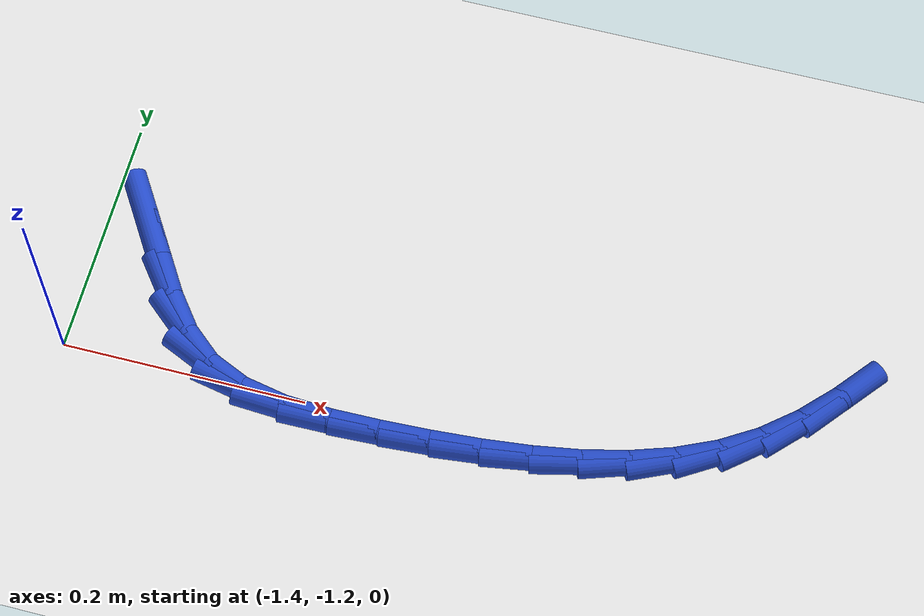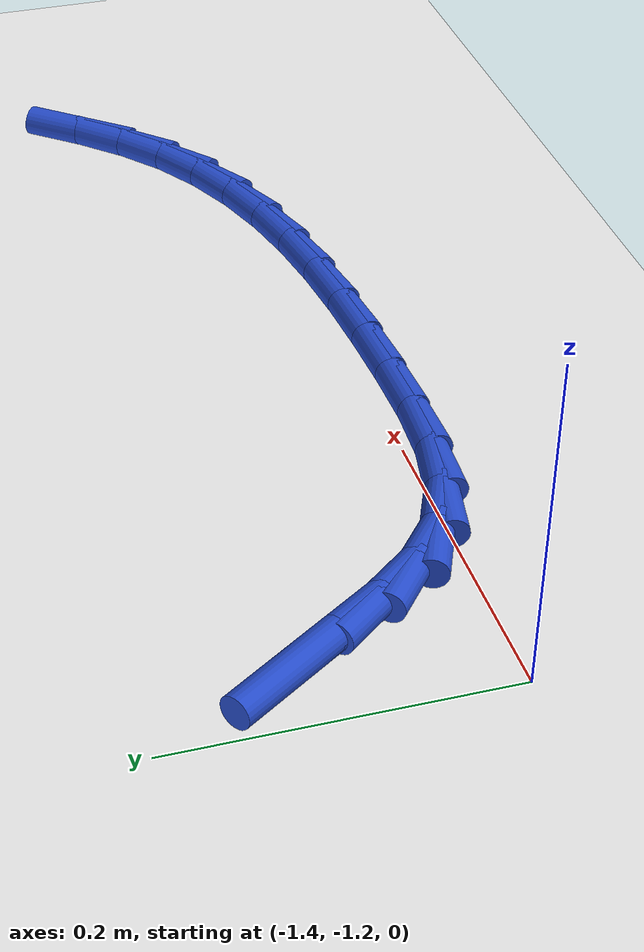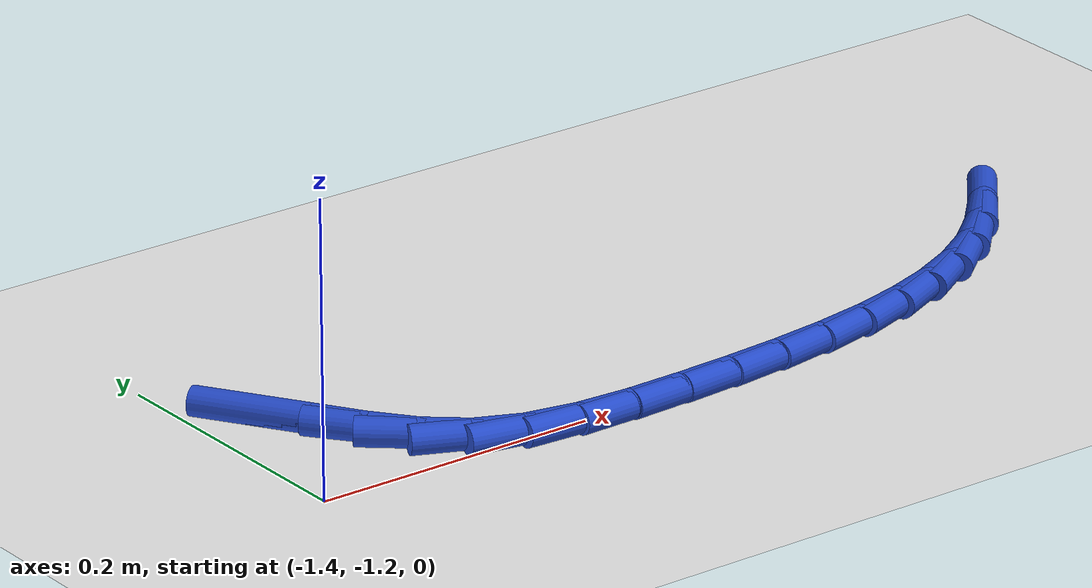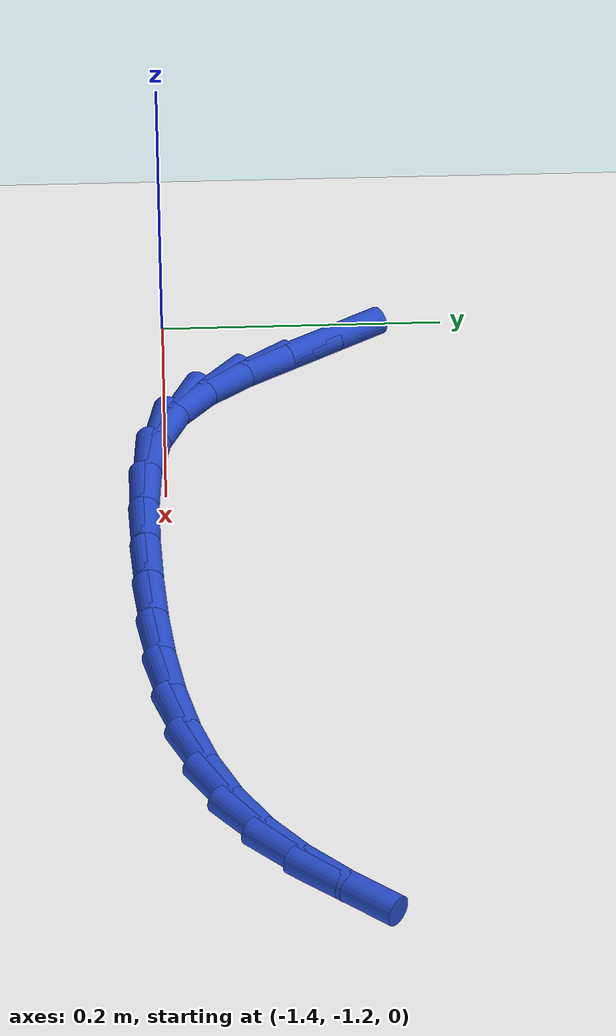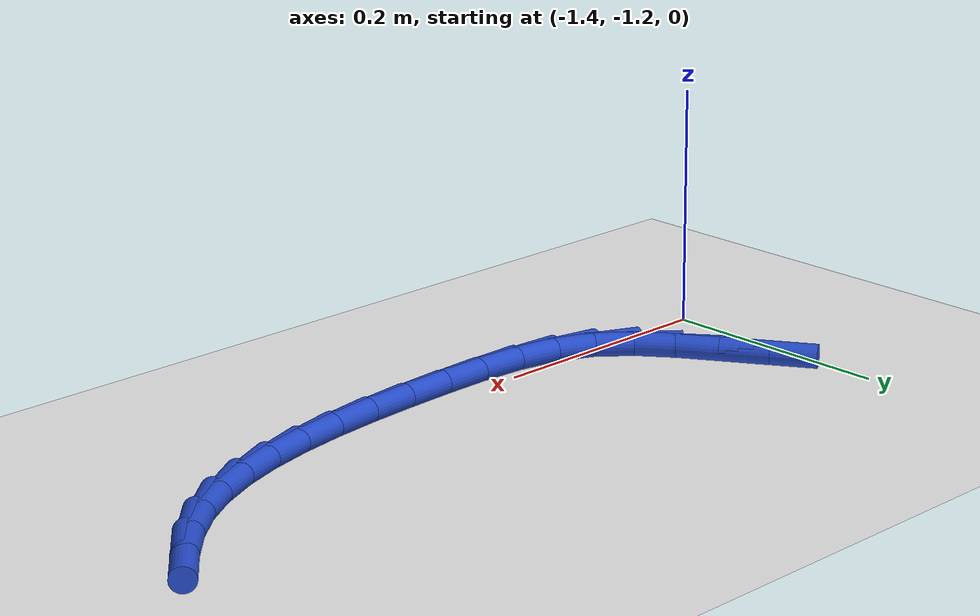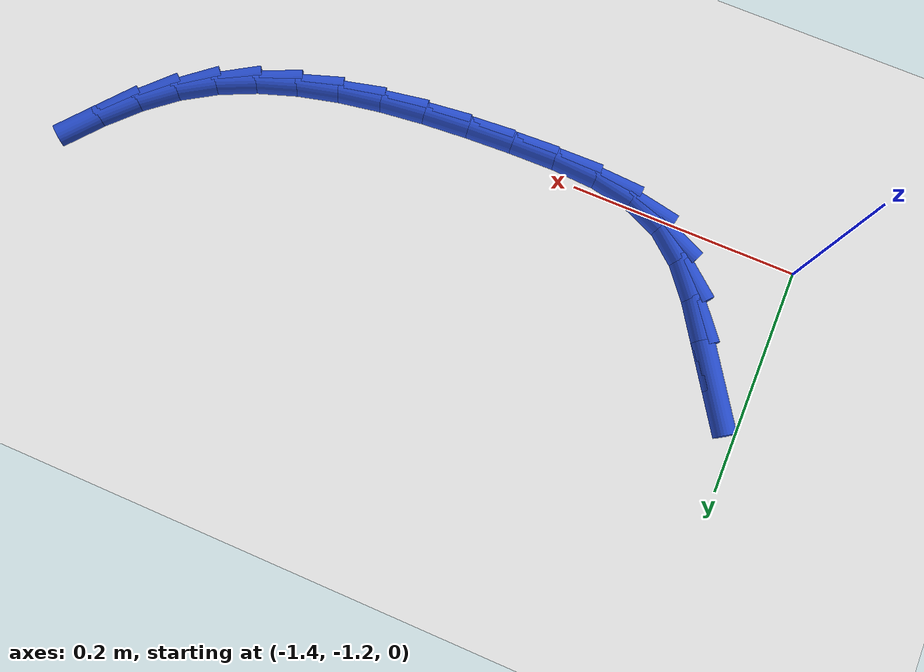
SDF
<sdf version="1.6">
 <world name="default">
  <model name="ground_plane">
   <static>1</static>
   <link name="link">
    <collision name="collision">
     <geometry><plane><normal>0 0 1</normal><size>100 100</size></plane></geometry>
     <surface><friction><ode><mu>100</mu><mu2>50</mu2></ode></friction></surface>
    </collision>
    <visual name="visual">
     <cast_shadows>0</cast_shadows>
     <geometry><plane><normal>0 0 1</normal><size>100 100</size></plane></geometry>
     <material>
      <script><uri>file://media/materials/scripts/gazebo.material</uri><name>Gazebo/WhiteGlow</name></script>
     </material>
    </visual>
   </link>
  </model>
  <model name="line">
   <link name="link_174">
    <pose>-1.3689212949263607 -1.0784018890274565 0.01 0 1.57 -1.000604617498845</pose>
    <collision name="collision">
     <geometry><cylinder><radius>0.01</radius><length>0.08</length></cylinder></geometry>
    </collision>
    <visual name="visual">
     <material>
      <script><name>Gazebo/Blue</name><uri>file://media/materials/scripts/gazebo.material</uri></script>
     </material>
     <geometry><cylinder><radius>0.01</radius><length>0.08</length></cylinder></geometry>
    </visual>
   </link>
   <link name="link_175">
    <pose>-1.348075521115148 -1.1109104731642718 0.01 0 1.57 -1.001474137818287</pose>
    <collision name="collision">
     <geometry><cylinder><radius>0.01</radius><length>0.08</length></cylinder></geometry>
    </collision>
    <visual name="visual">
     <material>
      <script><name>Gazebo/Blue</name><uri>file://media/materials/scripts/gazebo.material</uri></script>
     </material>
     <geometry><cylinder><radius>0.01</radius><length>0.08</length></cylinder></geometry>
    </visual>
   </link>
   <link name="link_176">
    <pose>-1.328124032590836 -1.1420840561874395 0.01 0 1.57 -0.9092802420920714</pose>
    <collision name="collision">
     <geometry><cylinder><radius>0.01</radius><length>0.08</length></cylinder></geometry>
    </collision>
    <visual name="visual">
     <material>
      <script><name>Gazebo/Blue</name><uri>file://media/materials/scripts/gazebo.material</uri></script>
     </material>
     <geometry><cylinder><radius>0.01</radius><length>0.08</length></cylinder></geometry>
    </visual>
   </link>
   <link name="link_177">
    <pose>-1.306705734980011 -1.1695950107328021 0.01 0 1.57 -0.7059049382122197</pose>
    <collision name="collision">
     <geometry><cylinder><radius>0.01</radius><length>0.08</length></cylinder></geometry>
    </collision>
    <visual name="visual">
     <material>
      <script><name>Gazebo/Blue</name><uri>file://media/materials/scripts/gazebo.material</uri></script>
     </material>
     <geometry><cylinder><radius>0.01</radius><length>0.08</length></cylinder></geometry>
    </visual>
   </link>
   <link name="link_178">
    <pose>-1.281459533909263 -1.1911157094362033 0.01 0 1.57 -0.4192581831444842</pose>
    <collision name="collision">
     <geometry><cylinder><radius>0.01</radius><length>0.08</length></cylinder></geometry>
    </collision>
    <visual name="visual">
     <material>
      <script><name>Gazebo/Blue</name><uri>file://media/materials/scripts/gazebo.material</uri></script>
     </material>
     <geometry><cylinder><radius>0.01</radius><length>0.08</length></cylinder></geometry>
    </visual>
   </link>
   <link name="link_179">
    <pose>-1.2505598064637324 -1.2048871953078013 0.01 0 1.57 -0.19547699746919328</pose>
    <collision name="collision">
     <geometry><cylinder><radius>0.01</radius><length>0.08</length></cylinder></geometry>
    </collision>
    <visual name="visual">
     <material>
      <script><name>Gazebo/Blue</name><uri>file://media/materials/scripts/gazebo.material</uri></script>
     </material>
     <geometry><cylinder><radius>0.01</radius><length>0.08</length></cylinder></geometry>
    </visual>
   </link>
   <link name="link_180">
    <pose>-1.2148284679201096 -1.2119621953613526 0.01 0 1.57 -0.05898655875466017</pose>
    <collision name="collision">
     <geometry><cylinder><radius>0.01</radius><length>0.08</length></cylinder></geometry>
    </collision>
    <visual name="visual">
     <material>
      <script><name>Gazebo/Blue</name><uri>file://media/materials/scripts/gazebo.material</uri></script>
     </material>
     <geometry><cylinder><radius>0.01</radius><length>0.08</length></cylinder></geometry>
    </visual>
   </link>
   <link name="link_181">
    <pose>-1.1759042254366256 -1.2142608691088277 0.01 0 1.57 0.01376568732971904</pose>
    <collision name="collision">
     <geometry><cylinder><radius>0.01</radius><length>0.08</length></cylinder></geometry>
    </collision>
    <visual name="visual">
     <material>
      <script><name>Gazebo/Blue</name><uri>file://media/materials/scripts/gazebo.material</uri></script>
     </material>
     <geometry><cylinder><radius>0.01</radius><length>0.08</length></cylinder></geometry>
    </visual>
   </link>
   <link name="link_182">
    <pose>-1.1354260192392016 -1.2137036235799459 0.01 0 1.57 0.04314934737847231</pose>
    <collision name="collision">
     <geometry><cylinder><radius>0.01</radius><length>0.08</length></cylinder></geometry>
    </collision>
    <visual name="visual">
     <material>
      <script><name>Gazebo/Blue</name><uri>file://media/materials/scripts/gazebo.material</uri></script>
     </material>
     <geometry><cylinder><radius>0.01</radius><length>0.08</length></cylinder></geometry>
    </visual>
   </link>
   <link name="link_183">
    <pose>-1.0948892121234612 -1.2119534004461572 0.01 0 1.57 0.07048868975689862</pose>
    <collision name="collision">
     <geometry><cylinder><radius>0.01</radius><length>0.08</length></cylinder></geometry>
    </collision>
    <visual name="visual">
     <material>
      <script><name>Gazebo/Blue</name><uri>file://media/materials/scripts/gazebo.material</uri></script>
     </material>
     <geometry><cylinder><radius>0.01</radius><length>0.08</length></cylinder></geometry>
    </visual>
   </link>
   <link name="link_184">
    <pose>-1.0549297585806452 -1.2091320365790332 0.01 0 1.57 0.11068350678135395</pose>
    <collision name="collision">
     <geometry><cylinder><radius>0.01</radius><length>0.08</length></cylinder></geometry>
    </collision>
    <visual name="visual">
     <material>
      <script><name>Gazebo/Blue</name><uri>file://media/materials/scripts/gazebo.material</uri></script>
     </material>
     <geometry><cylinder><radius>0.01</radius><length>0.08</length></cylinder></geometry>
    </visual>
   </link>
   <link name="link_185">
    <pose>-1.0158652625430067 -1.2047904975052879 0.01 0 1.57 0.16522414663145232</pose>
    <collision name="collision">
     <geometry><cylinder><radius>0.01</radius><length>0.08</length></cylinder></geometry>
    </collision>
    <visual name="visual">
     <material>
      <script><name>Gazebo/Blue</name><uri>file://media/materials/scripts/gazebo.material</uri></script>
     </material>
     <geometry><cylinder><radius>0.01</radius><length>0.08</length></cylinder></geometry>
    </visual>
   </link>
   <link name="link_186">
    <pose>-0.9780128096077322 -1.1984788192648563 0.01 0 1.57 0.2359141617971941</pose>
    <collision name="collision">
     <geometry><cylinder><radius>0.01</radius><length>0.08</length></cylinder></geometry>
    </collision>
    <visual name="visual">
     <material>
      <script><name>Gazebo/Blue</name><uri>file://media/materials/scripts/gazebo.material</uri></script>
     </material>
     <geometry><cylinder><radius>0.01</radius><length>0.08</length></cylinder></geometry>
    </visual>
   </link>
   <link name="link_187">
    <pose>-0.9416894853720088 -1.1897470378976747 0.01 0 1.57 0.3246056831124963</pose>
    <collision name="collision">
     <geometry><cylinder><radius>0.01</radius><length>0.08</length></cylinder></geometry>
    </collision>
    <visual name="visual">
     <material>
      <script><name>Gazebo/Blue</name><uri>file://media/materials/scripts/gazebo.material</uri></script>
     </material>
     <geometry><cylinder><radius>0.01</radius><length>0.08</length></cylinder></geometry>
    </visual>
   </link>
   <link name="link_188">
    <pose>-0.9072123754330231 -1.1781451894436794 0.01 0 1.57 0.4326070908875054</pose>
    <collision name="collision">
     <geometry><cylinder><radius>0.01</radius><length>0.08</length></cylinder></geometry>
    </collision>
    <visual name="visual">
     <material>
      <script><name>Gazebo/Blue</name><uri>file://media/materials/scripts/gazebo.material</uri></script>
     </material>
     <geometry><cylinder><radius>0.01</radius><length>0.08</length></cylinder></geometry>
    </visual>
   </link>
   <link name="link_189">
    <pose>-0.8748985653879638 -1.1632233099428066 0.01 0 1.57 0.5597069440465452</pose>
    <collision name="collision">
     <geometry><cylinder><radius>0.01</radius><length>0.08</length></cylinder></geometry>
    </collision>
    <visual name="visual">
     <material>
      <script><name>Gazebo/Blue</name><uri>file://media/materials/scripts/gazebo.material</uri></script>
     </material>
     <geometry><cylinder><radius>0.01</radius><length>0.08</length></cylinder></geometry>
    </visual>
   </link>
   <link name="link_190">
    <pose>-0.8450651408340182 -1.144531435434993 0.01 0 1.57 0.6984746744208047</pose>
    <collision name="collision">
     <geometry><cylinder><radius>0.01</radius><length>0.08</length></cylinder></geometry>
    </collision>
    <visual name="visual">
     <material>
      <script><name>Gazebo/Blue</name><uri>file://media/materials/scripts/gazebo.material</uri></script>
     </material>
     <geometry><cylinder><radius>0.01</radius><length>0.08</length></cylinder></geometry>
    </visual>
   </link>
   <link name="link_191">
    <pose>-0.8179340811921257 -1.1217499117847518 0.01 0 1.57 0.8128171111724461</pose>
    <collision name="collision">
     <geometry><cylinder><radius>0.01</radius><length>0.08</length></cylinder></geometry>
    </collision>
    <visual name="visual">
     <material>
      <script><name>Gazebo/Blue</name><uri>file://media/materials/scripts/gazebo.material</uri></script>
     </material>
     <geometry><cylinder><radius>0.01</radius><length>0.08</length></cylinder></geometry>
    </visual>
   </link>
   <link name="link_192">
    <pose>-0.793060208139764 -1.095473191720595 0.01 0 1.57 0.889344663963541</pose>
    <collision name="collision">
     <geometry><cylinder><radius>0.01</radius><length>0.08</length></cylinder></geometry>
    </collision>
    <visual name="visual">
     <material>
      <script><name>Gazebo/Blue</name><uri>file://media/materials/scripts/gazebo.material</uri></script>
     </material>
     <geometry><cylinder><radius>0.01</radius><length>0.08</length></cylinder></geometry>
    </visual>
   </link>
  </model>
 </world>
</sdf>
